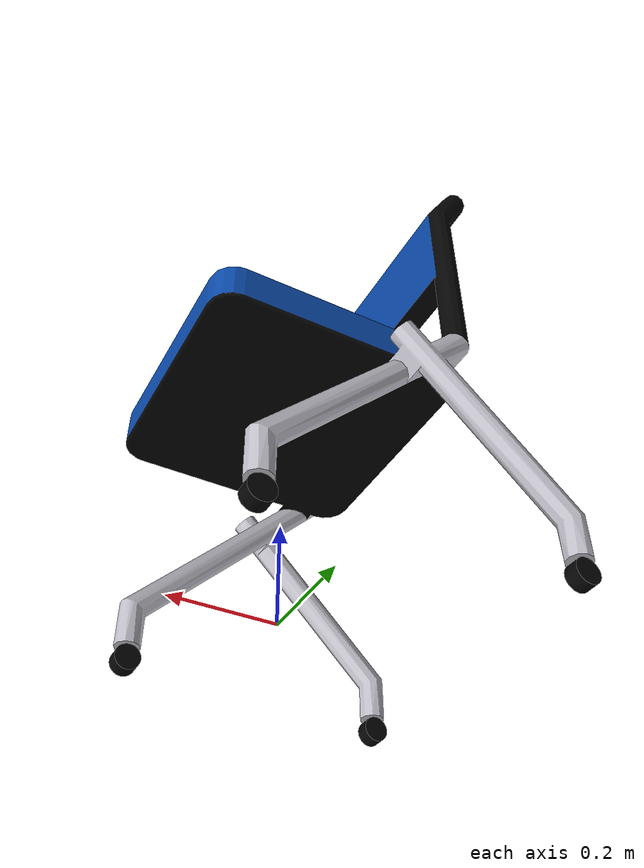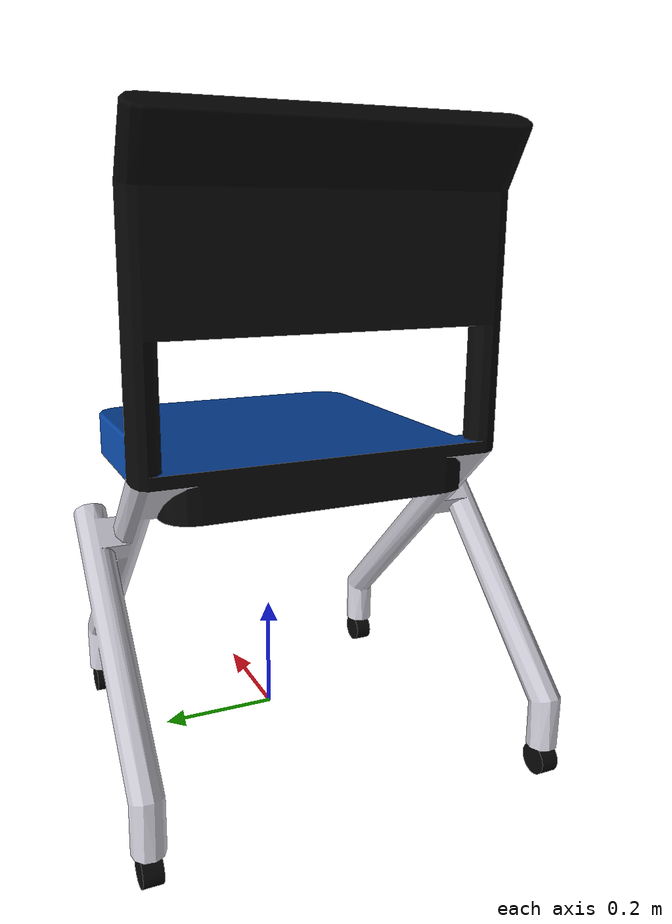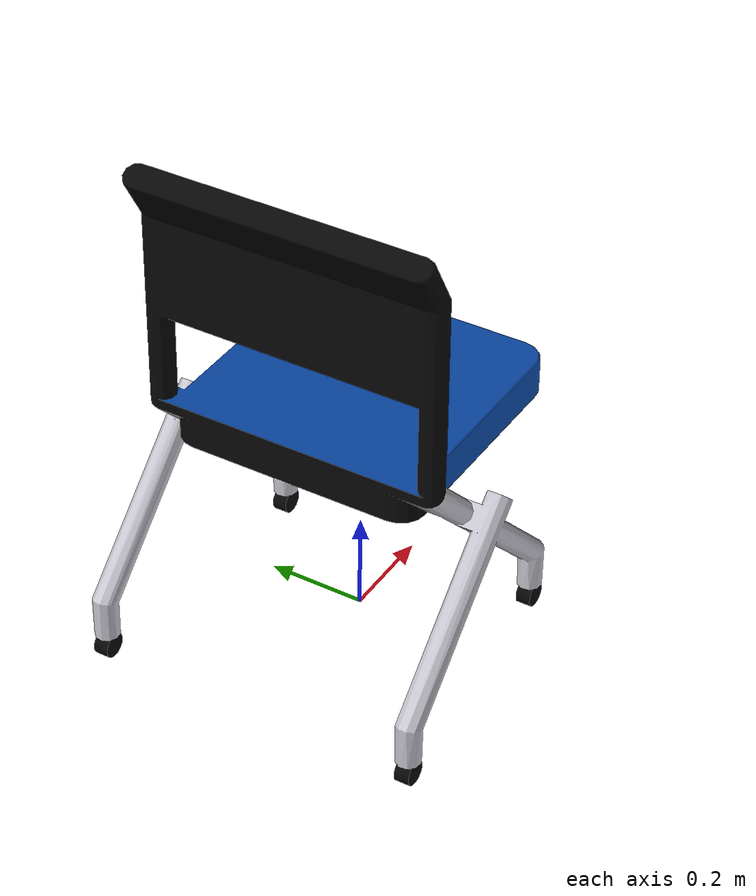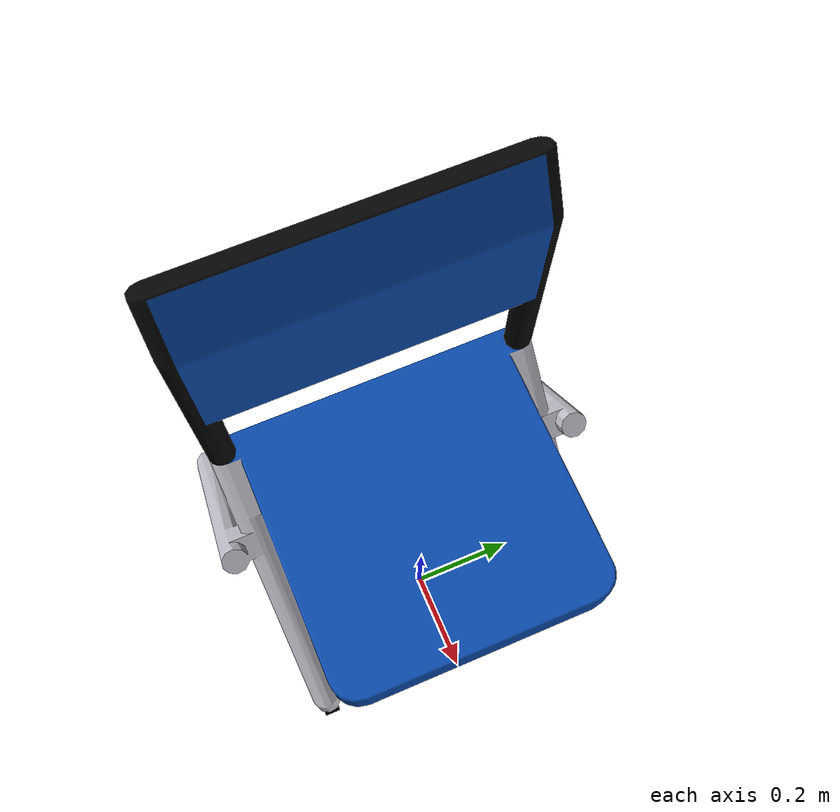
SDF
<?xml version='1.0'?>
<sdf version="1.6">
<model name="chair">
  <pose>0 0 0 0 0 0</pose>
    <link name="chair_link">
      <inertial>
        <pose>-0.084 0 0.572 0 0 0</pose>
        <mass>3.5</mass>
        <inertia>
          <ixx>1.4596</ixx>
          <ixy>0.0</ixy>
          <ixz>0.2280</ixz>
          <iyy>1.4595</iyy>
          <iyz>0.0</iyz>
          <izz>0.2478</izz>
        </inertia>
      </inertial>
      <collision name="collision">
        <geometry>
          <mesh>
            <uri>model://chair/chair.dae</uri>
          </mesh>
        </geometry>
      </collision>
      <visual name="visual">
        <geometry>
          <mesh>
            <uri>model://chair/chair.dae</uri>
          </mesh>
        </geometry>
      </visual>
    </link>
  </model>
</sdf>
